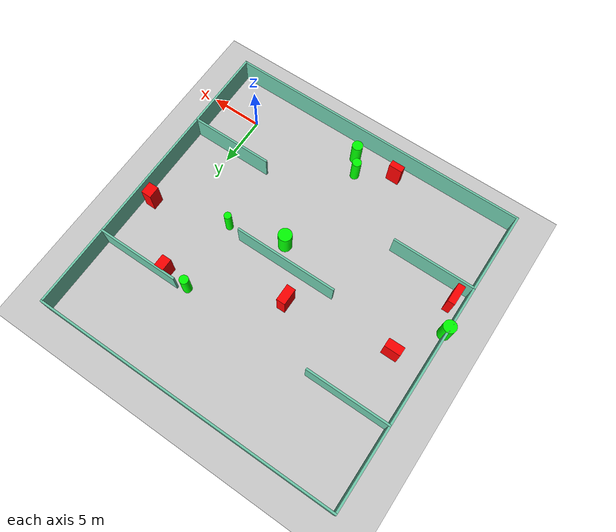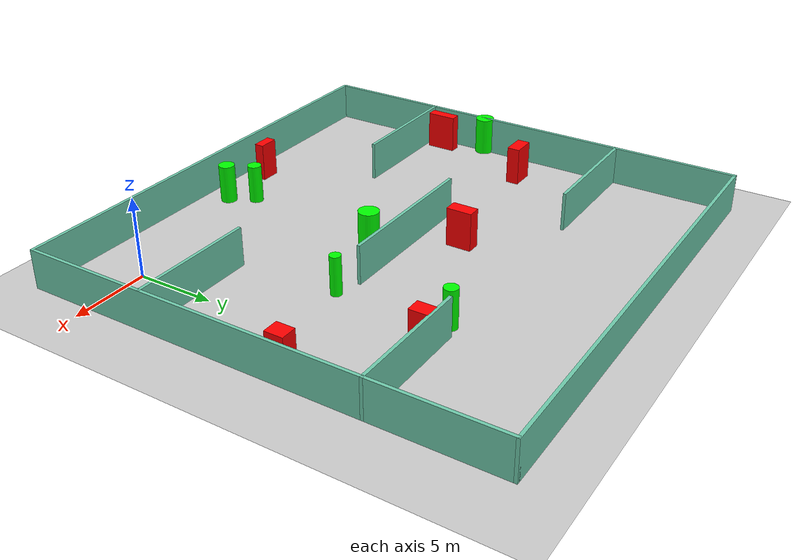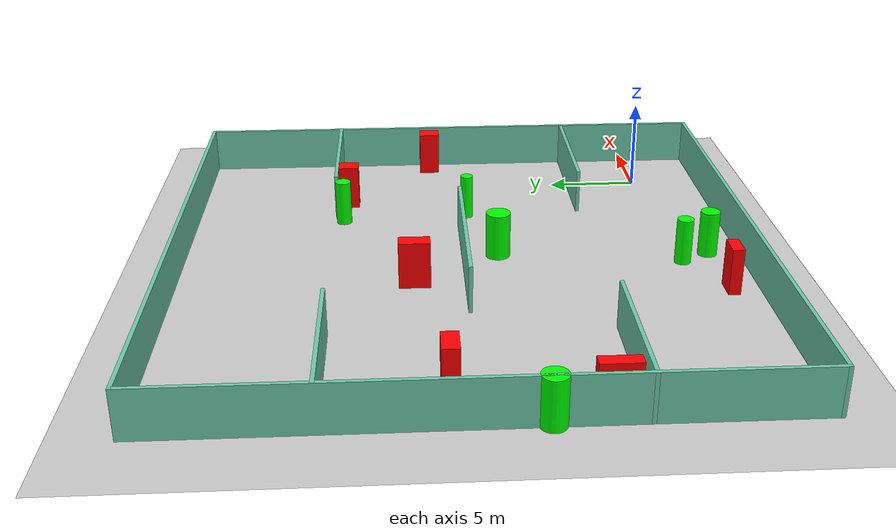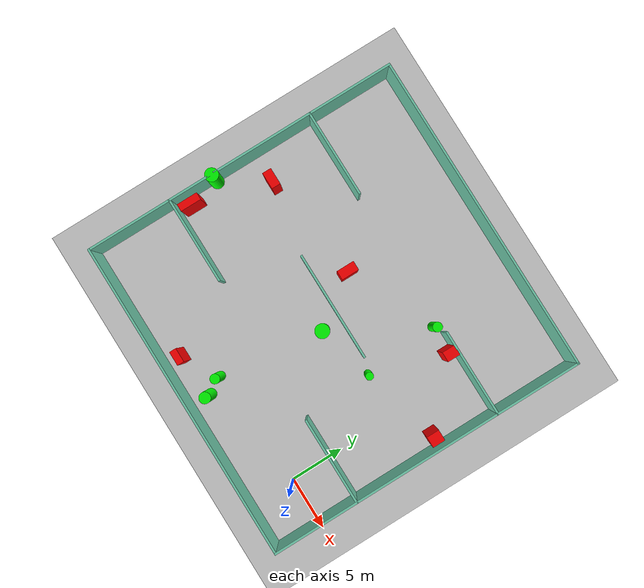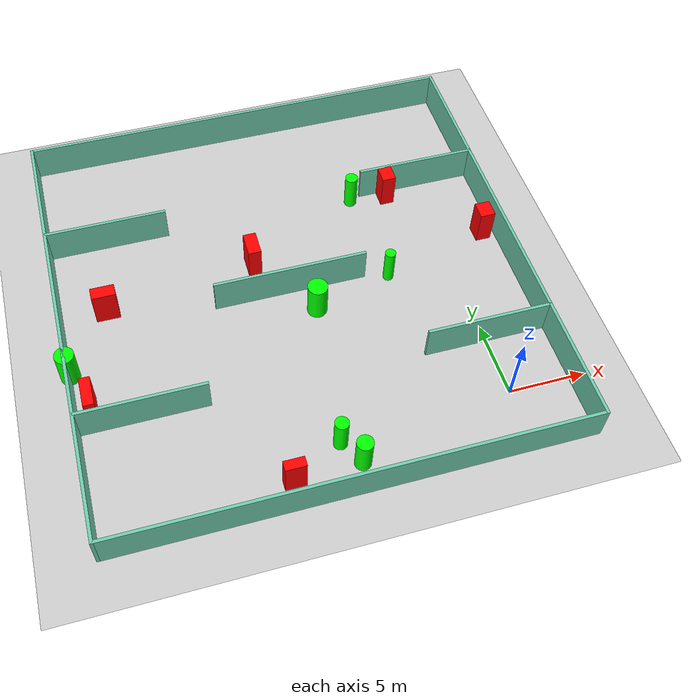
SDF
<sdf version="1.7">
 <world name="default">
  <light name="sun" type="directional">
   <pose>0 0 10 0 -0 0</pose>
   <diffuse>0.8 0.8 0.8 1</diffuse>
   <specular>0.2 0.2 0.2 1</specular>
   <attenuation>
    <range>1000</range>
    <constant>0.9</constant>
    <linear>0.01</linear>
    <quadratic>0.001</quadratic>
   </attenuation>
   <direction>-0.5 0.1 -0.9</direction>
   <spot><inner_angle>0</inner_angle><outer_angle>0</outer_angle><falloff>0</falloff></spot>
  </light>
  <model name="ground_plane">
   <static>1</static>
   <link name="link">
    <collision name="collision">
     <geometry><plane><normal>0 0 1</normal><size>100 100</size></plane></geometry>
     <surface>
      <contact><collide_bitmask>65535</collide_bitmask></contact>
      <friction><ode><mu>100</mu><mu2>50</mu2></ode></friction>
     </surface>
    </collision>
    <visual name="visual">
     <cast_shadows>0</cast_shadows>
     <geometry><plane><normal>0 0 1</normal><size>100 100</size></plane></geometry>
     <material>
      <script><uri>file://media/materials/scripts/gazebo.material</uri><name>Gazebo/Grey</name></script>
     </material>
    </visual>
   </link>
  </model>
  <gravity>0 0 -9.8</gravity>
  <magnetic_field>6e-06 2.3e-05 -4.2e-05</magnetic_field>
  <atmosphere type="adiabatic"/>
  <physics type="ode">
   <max_step_size>0.001</max_step_size>
   <real_time_factor>1</real_time_factor>
   <real_time_update_rate>1000</real_time_update_rate>
  </physics>
  <scene><ambient>0.4 0.4 0.4 1</ambient><background>0.7 0.7 0.7 1</background><shadows>1</shadows></scene>
  <spherical_coordinates>
   <surface_model>EARTH_WGS84</surface_model>
   <latitude_deg>0</latitude_deg>
   <longitude_deg>0</longitude_deg>
   <elevation>0</elevation>
   <heading_deg>0</heading_deg>
  </spherical_coordinates>
  <model name="my_base_walls">
   <link name="Wall_10">
    <collision name="Wall_10_Collision">
     <geometry><box><size>8.2 0.2 2.5</size></box></geometry>
     <pose>0 0 1.25 0 -0 0</pose>
    </collision>
    <visual name="Wall_10_Visual">
     <pose>0 0 1.25 0 -0 0</pose>
     <geometry><box><size>8.2 0.2 2.5</size></box></geometry>
     <material>
      <script><uri>file://media/materials/scripts/gazebo.material</uri><name>Gazebo/Grey</name></script>
      <ambient>0.435294 0.796078 0.67451 1</ambient>
     </material>
     <meta><layer>0</layer></meta>
    </visual>
    <pose>-11 -7 0 0 -0 0</pose>
   </link>
   <link name="Wall_12">
    <collision name="Wall_12_Collision">
     <geometry><box><size>8.2 0.2 2.5</size></box></geometry>
     <pose>0 0 1.25 0 -0 0</pose>
    </collision>
    <visual name="Wall_12_Visual">
     <pose>0 0 1.25 0 -0 0</pose>
     <geometry><box><size>8.2 0.2 2.5</size></box></geometry>
     <material>
      <script><uri>file://media/materials/scripts/gazebo.material</uri><name>Gazebo/Grey</name></script>
      <ambient>0.435294 0.796078 0.67451 1</ambient>
     </material>
     <meta><layer>0</layer></meta>
    </visual>
    <pose>-11 7 0 0 -0 0</pose>
   </link>
   <link name="Wall_14">
    <collision name="Wall_14_Collision">
     <geometry><box><size>8.2 0.2 2.5</size></box></geometry>
     <pose>0 0 1.25 0 -0 0</pose>
    </collision>
    <visual name="Wall_14_Visual">
     <pose>0 0 1.25 0 -0 0</pose>
     <geometry><box><size>8.2 0.2 2.5</size></box></geometry>
     <material>
      <script><uri>file://media/materials/scripts/gazebo.material</uri><name>Gazebo/Grey</name></script>
      <ambient>0.435294 0.796078 0.67451 1</ambient>
     </material>
     <meta><layer>0</layer></meta>
    </visual>
    <pose>11 7 0 0 -0 3.14159</pose>
   </link>
   <link name="Wall_16">
    <collision name="Wall_16_Collision">
     <geometry><box><size>10.2 0.2 2.5</size></box></geometry>
     <pose>0 0 1.25 0 -0 0</pose>
    </collision>
    <visual name="Wall_16_Visual">
     <pose>0 0 1.25 0 -0 0</pose>
     <geometry><box><size>10.2 0.2 2.5</size></box></geometry>
     <material>
      <script><uri>file://media/materials/scripts/gazebo.material</uri><name>Gazebo/Grey</name></script>
      <ambient>0.435294 0.796078 0.67451 1</ambient>
     </material>
     <meta><layer>0</layer></meta>
    </visual>
    <pose>0 0 0 0 -0 3.14159</pose>
   </link>
   <link name="Wall_2">
    <collision name="Wall_2_Collision">
     <geometry><box><size>30.2 0.2 2.5</size></box></geometry>
     <pose>0 0 1.25 0 -0 0</pose>
    </collision>
    <visual name="Wall_2_Visual">
     <pose>0 0 1.25 0 -0 0</pose>
     <geometry><box><size>30.2 0.2 2.5</size></box></geometry>
     <material>
      <script><uri>file://media/materials/scripts/gazebo.material</uri><name>Gazebo/Grey</name></script>
      <ambient>0.435294 0.796078 0.67451 1</ambient>
     </material>
     <meta><layer>0</layer></meta>
    </visual>
    <pose>0 -15 0 0 -0 3.14159</pose>
   </link>
   <link name="Wall_3">
    <collision name="Wall_3_Collision">
     <geometry><box><size>30.2 0.2 2.5</size></box></geometry>
     <pose>0 0 1.25 0 -0 0</pose>
    </collision>
    <visual name="Wall_3_Visual">
     <pose>0 0 1.25 0 -0 0</pose>
     <geometry><box><size>30.2 0.2 2.5</size></box></geometry>
     <material>
      <script><uri>file://media/materials/scripts/gazebo.material</uri><name>Gazebo/Grey</name></script>
      <ambient>0.435294 0.796078 0.67451 1</ambient>
     </material>
     <meta><layer>0</layer></meta>
    </visual>
    <pose>-15 0 0 0 -0 1.5708</pose>
   </link>
   <link name="Wall_4">
    <collision name="Wall_4_Collision">
     <geometry><box><size>30.2 0.2 2.5</size></box></geometry>
     <pose>0 0 1.25 0 -0 0</pose>
    </collision>
    <visual name="Wall_4_Visual">
     <pose>0 0 1.25 0 -0 0</pose>
     <geometry><box><size>30.2 0.2 2.5</size></box></geometry>
     <material>
      <script><uri>file://media/materials/scripts/gazebo.material</uri><name>Gazebo/Grey</name></script>
      <ambient>0.435294 0.796078 0.67451 1</ambient>
     </material>
     <meta><layer>0</layer></meta>
    </visual>
    <pose>0 15 0 0 -0 0</pose>
   </link>
   <link name="Wall_6">
    <collision name="Wall_6_Collision">
     <geometry><box><size>30.2 0.2 2.5</size></box></geometry>
     <pose>0 0 1.25 0 -0 0</pose>
    </collision>
    <visual name="Wall_6_Visual">
     <pose>0 0 1.25 0 -0 0</pose>
     <geometry><box><size>30.2 0.2 2.5</size></box></geometry>
     <material>
      <script><uri>file://media/materials/scripts/gazebo.material</uri><name>Gazebo/Grey</name></script>
      <ambient>0.435294 0.796078 0.67451 1</ambient>
     </material>
     <meta><layer>0</layer></meta>
    </visual>
    <pose>15 0 0 0 -0 1.5708</pose>
   </link>
   <link name="Wall_8">
    <collision name="Wall_8_Collision">
     <geometry><box><size>8.2 0.2 2.5</size></box></geometry>
     <pose>0 0 1.25 0 -0 0</pose>
    </collision>
    <visual name="Wall_8_Visual">
     <pose>0 0 1.25 0 -0 0</pose>
     <geometry><box><size>8.2 0.2 2.5</size></box></geometry>
     <material>
      <script><uri>file://media/materials/scripts/gazebo.material</uri><name>Gazebo/Grey</name></script>
      <ambient>0.435294 0.796078 0.67451 1</ambient>
     </material>
     <meta><layer>0</layer></meta>
    </visual>
    <pose>11 -7 0 0 -0 3.14159</pose>
   </link>
   <static>1</static>
   <pose>-11 11 0 0 -0 0</pose>
  </model>
  <model name="cylinder1">
   <static>1</static>
   <link name="link">
    <inertial>
     <mass>1</mass>
     <inertia><ixx>0.5</ixx><ixy>0</ixy><ixz>0</ixz><iyy>0.5</iyy><iyz>0</iyz><izz>1</izz></inertia>
    </inertial>
    <collision name="collision">
     <geometry><cylinder><radius>0.44127244716787306</radius><length>2.5</length></cylinder></geometry>
    </collision>
    <visual name="visual">
     <geometry><cylinder><radius>0.44127244716787306</radius><length>2.5</length></cylinder></geometry>
     <material>
      <ambient>0 1 0 1</ambient>
      <diffuse>0 1 0 1</diffuse>
      <specular>0.1 0.1 0.1 1</specular>
      <emissive>0 0 0 0</emissive>
     </material>
    </visual>
   </link>
   <pose>-11.083513409548907 -0.655695473538823 1.25 0 0 0</pose>
  </model>
  <model name="cylinder2">
   <static>1</static>
   <link name="link">
    <inertial>
     <mass>1</mass>
     <inertia><ixx>0.5</ixx><ixy>0</ixy><ixz>0</ixz><iyy>0.5</iyy><iyz>0</iyz><izz>1</izz></inertia>
    </inertial>
    <collision name="collision">
     <geometry><cylinder><radius>0.520610645671724</radius><length>2.5</length></cylinder></geometry>
    </collision>
    <visual name="visual">
     <geometry><cylinder><radius>0.520610645671724</radius><length>2.5</length></cylinder></geometry>
     <material>
      <ambient>0 1 0 1</ambient>
      <diffuse>0 1 0 1</diffuse>
      <specular>0.1 0.1 0.1 1</specular>
      <emissive>0 0 0 0</emissive>
     </material>
    </visual>
   </link>
   <pose>-10.175141035137404 -2.2115038657394885 1.25 0 0 0</pose>
  </model>
  <model name="cylinder3">
   <static>1</static>
   <link name="link">
    <inertial>
     <mass>1</mass>
     <inertia><ixx>0.5</ixx><ixy>0</ixy><ixz>0</ixz><iyy>0.5</iyy><iyz>0</iyz><izz>1</izz></inertia>
    </inertial>
    <collision name="collision">
     <geometry><cylinder><radius>0.6577979314633516</radius><length>2.5</length></cylinder></geometry>
    </collision>
    <visual name="visual">
     <geometry><cylinder><radius>0.6577979314633516</radius><length>2.5</length></cylinder></geometry>
     <material>
      <ambient>0 1 0 1</ambient>
      <diffuse>0 1 0 1</diffuse>
      <specular>0.1 0.1 0.1 1</specular>
      <emissive>0 0 0 0</emissive>
     </material>
    </visual>
   </link>
   <pose>-9.712407871830237 9.135084120346109 1.25 0 0 0</pose>
  </model>
  <model name="cylinder4">
   <static>1</static>
   <link name="link">
    <inertial>
     <mass>1</mass>
     <inertia><ixx>0.5</ixx><ixy>0</ixy><ixz>0</ixz><iyy>0.5</iyy><iyz>0</iyz><izz>1</izz></inertia>
    </inertial>
    <collision name="collision">
     <geometry><cylinder><radius>0.35227201076250353</radius><length>2.5</length></cylinder></geometry>
    </collision>
    <visual name="visual">
     <geometry><cylinder><radius>0.35227201076250353</radius><length>2.5</length></cylinder></geometry>
     <material>
      <ambient>0 1 0 1</ambient>
      <diffuse>0 1 0 1</diffuse>
      <specular>0.1 0.1 0.1 1</specular>
      <emissive>0 0 0 0</emissive>
     </material>
    </visual>
   </link>
   <pose>-4.3831123828114045 10.509319918944938 1.25 0 0 0</pose>
  </model>
  <model name="cylinder5">
   <static>1</static>
   <link name="link">
    <inertial>
     <mass>1</mass>
     <inertia><ixx>0.5</ixx><ixy>0</ixy><ixz>0</ixz><iyy>0.5</iyy><iyz>0</iyz><izz>1</izz></inertia>
    </inertial>
    <collision name="collision">
     <geometry><cylinder><radius>0.6195730031314921</radius><length>2.5</length></cylinder></geometry>
    </collision>
    <visual name="visual">
     <geometry><cylinder><radius>0.6195730031314921</radius><length>2.5</length></cylinder></geometry>
     <material>
      <ambient>0 1 0 1</ambient>
      <diffuse>0 1 0 1</diffuse>
      <specular>0.1 0.1 0.1 1</specular>
      <emissive>0 0 0 0</emissive>
     </material>
    </visual>
   </link>
   <pose>-25.939954415609687 8.170944386469198 1.25 0 0 0</pose>
  </model>
  <model name="cylinder6">
   <static>1</static>
   <link name="link">
    <inertial>
     <mass>1</mass>
     <inertia><ixx>0.5</ixx><ixy>0</ixy><ixz>0</ixz><iyy>0.5</iyy><iyz>0</iyz><izz>1</izz></inertia>
    </inertial>
    <collision name="collision">
     <geometry><cylinder><radius>0.4316611947043904</radius><length>2.5</length></cylinder></geometry>
    </collision>
    <visual name="visual">
     <geometry><cylinder><radius>0.4316611947043904</radius><length>2.5</length></cylinder></geometry>
     <material>
      <ambient>0 1 0 1</ambient>
      <diffuse>0 1 0 1</diffuse>
      <specular>0.1 0.1 0.1 1</specular>
      <emissive>0 0 0 0</emissive>
     </material>
    </visual>
   </link>
   <pose>-4.861195963837709 17.574035302324745 1.25 0 0 0</pose>
  </model>
  <model name="box1">
   <static>1</static>
   <link name="link">
    <inertial>
     <mass>1</mass>
     <inertia><ixx>0.083</ixx><ixy>0</ixy><ixz>0</ixz><iyy>0.083</iyy><iyz>0</iyz><izz>0.083</izz></inertia>
    </inertial>
    <collision name="collision">
     <geometry><box><size>0.9352783303150161 1.1810904563171405 2.5</size></box></geometry>
    </collision>
    <visual name="visual">
     <geometry><box><size>0.9352783303150161 1.1810904563171405 2.5</size></box></geometry>
     <material>
      <ambient>1 0 0 1</ambient>
      <diffuse>1 0 0 1</diffuse>
      <specular>0.1 0.1 0.1 1</specular>
      <emissive>0 0 0 0</emissive>
     </material>
    </visual>
    <sensor name="my_contact" type="contact">
     <contact><collision>box_collision</collision><topic>__default_topic__</topic></contact>
    </sensor>
   </link>
   <pose>-2.365047860509229 17.351931325922187 1.25 0 0 0</pose>
  </model>
  <model name="box2">
   <static>1</static>
   <link name="link">
    <inertial>
     <mass>1</mass>
     <inertia><ixx>0.083</ixx><ixy>0</ixy><ixz>0</ixz><iyy>0.083</iyy><iyz>0</iyz><izz>0.083</izz></inertia>
    </inertial>
    <collision name="collision">
     <geometry><box><size>1.3153549688627795 0.6249470836471429 2.5</size></box></geometry>
    </collision>
    <visual name="visual">
     <geometry><box><size>1.3153549688627795 0.6249470836471429 2.5</size></box></geometry>
     <material>
      <ambient>1 0 0 1</ambient>
      <diffuse>1 0 0 1</diffuse>
      <specular>0.1 0.1 0.1 1</specular>
      <emissive>0 0 0 0</emissive>
     </material>
    </visual>
    <sensor name="my_contact" type="contact">
     <contact><collision>box_collision</collision><topic>__default_topic__</topic></contact>
    </sensor>
   </link>
   <pose>-14.36149874764176 -2.4210724657583675 1.25 0 0 0</pose>
  </model>
  <model name="box3">
   <static>1</static>
   <link name="link">
    <inertial>
     <mass>1</mass>
     <inertia><ixx>0.083</ixx><ixy>0</ixy><ixz>0</ixz><iyy>0.083</iyy><iyz>0</iyz><izz>0.083</izz></inertia>
    </inertial>
    <collision name="collision">
     <geometry><box><size>0.861928439787604 1.6427957893696032 2.5</size></box></geometry>
    </collision>
    <visual name="visual">
     <geometry><box><size>0.861928439787604 1.6427957893696032 2.5</size></box></geometry>
     <material>
      <ambient>1 0 0 1</ambient>
      <diffuse>1 0 0 1</diffuse>
      <specular>0.1 0.1 0.1 1</specular>
      <emissive>0 0 0 0</emissive>
     </material>
    </visual>
    <sensor name="my_contact" type="contact">
     <contact><collision>box_collision</collision><topic>__default_topic__</topic></contact>
    </sensor>
   </link>
   <pose>-12.918428163056342 13.678321685277552 1.25 0 0 0</pose>
  </model>
  <model name="box4">
   <static>1</static>
   <link name="link">
    <inertial>
     <mass>1</mass>
     <inertia><ixx>0.083</ixx><ixy>0</ixy><ixz>0</ixz><iyy>0.083</iyy><iyz>0</iyz><izz>0.083</izz></inertia>
    </inertial>
    <collision name="collision">
     <geometry><box><size>0.6803899064673418 1.9503561195866022 2.5</size></box></geometry>
    </collision>
    <visual name="visual">
     <geometry><box><size>0.6803899064673418 1.9503561195866022 2.5</size></box></geometry>
     <material>
      <ambient>1 0 0 1</ambient>
      <diffuse>1 0 0 1</diffuse>
      <specular>0.1 0.1 0.1 1</specular>
      <emissive>0 0 0 0</emissive>
     </material>
    </visual>
    <sensor name="my_contact" type="contact">
     <contact><collision>box_collision</collision><topic>__default_topic__</topic></contact>
    </sensor>
   </link>
   <pose>-24.986808212205244 5.321864844231444 1.25 0 0 0</pose>
  </model>
  <model name="box5">
   <static>1</static>
   <link name="link">
    <inertial>
     <mass>1</mass>
     <inertia><ixx>0.083</ixx><ixy>0</ixy><ixz>0</ixz><iyy>0.083</iyy><iyz>0</iyz><izz>0.083</izz></inertia>
    </inertial>
    <collision name="collision">
     <geometry><box><size>1.014892311603922 1.176784711729493 2.5</size></box></geometry>
    </collision>
    <visual name="visual">
     <geometry><box><size>1.014892311603922 1.176784711729493 2.5</size></box></geometry>
     <material>
      <ambient>1 0 0 1</ambient>
      <diffuse>1 0 0 1</diffuse>
      <specular>0.1 0.1 0.1 1</specular>
      <emissive>0 0 0 0</emissive>
     </material>
    </visual>
    <sensor name="my_contact" type="contact">
     <contact><collision>box_collision</collision><topic>__default_topic__</topic></contact>
    </sensor>
   </link>
   <pose>2.9960808375956844 12.45968353205965 1.25 0 0 0</pose>
  </model>
  <model name="box6">
   <static>1</static>
   <link name="link">
    <inertial>
     <mass>1</mass>
     <inertia><ixx>0.083</ixx><ixy>0</ixy><ixz>0</ixz><iyy>0.083</iyy><iyz>0</iyz><izz>0.083</izz></inertia>
    </inertial>
    <collision name="collision">
     <geometry><box><size>1.5484697813586423 0.8348142465087058 2.5</size></box></geometry>
    </collision>
    <visual name="visual">
     <geometry><box><size>1.5484697813586423 0.8348142465087058 2.5</size></box></geometry>
     <material>
      <ambient>1 0 0 1</ambient>
      <diffuse>1 0 0 1</diffuse>
      <specular>0.1 0.1 0.1 1</specular>
      <emissive>0 0 0 0</emissive>
     </material>
    </visual>
    <sensor name="my_contact" type="contact">
     <contact><collision>box_collision</collision><topic>__default_topic__</topic></contact>
    </sensor>
   </link>
   <pose>-22.9885785682268 12.312400660239653 1.25 0 0 0</pose>
  </model>
 </world>
</sdf>
